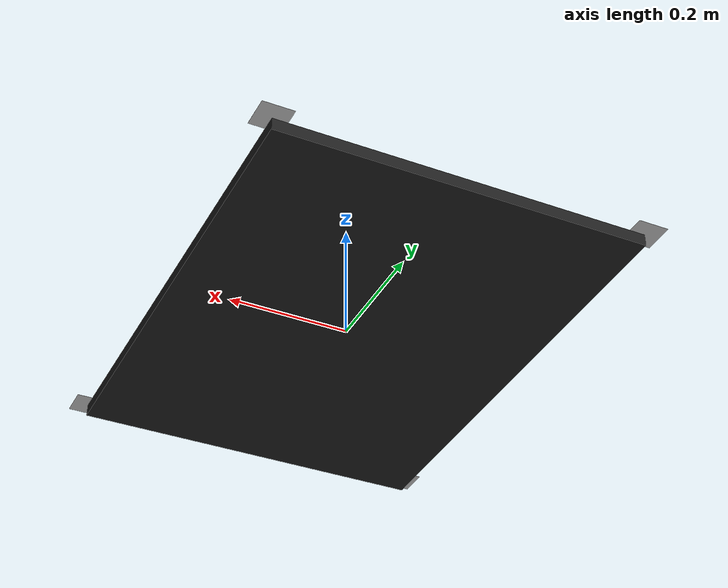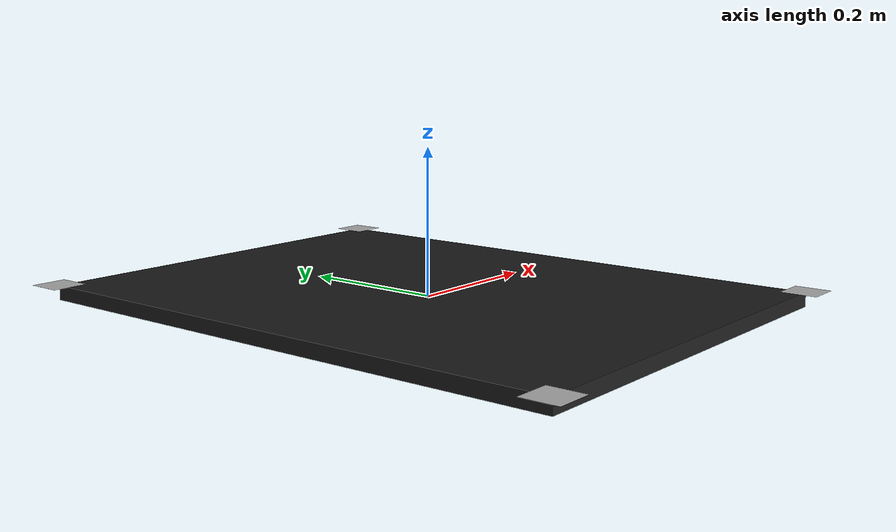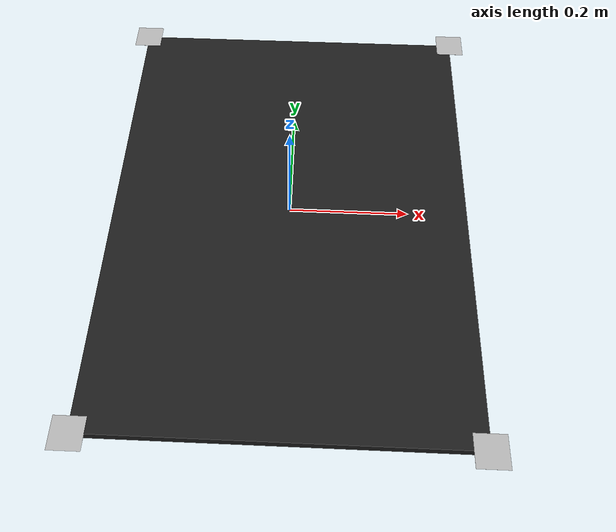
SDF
<?xml version="1.0"?>
<sdf version="1.7">
  <model name="table">
    <static>true</static>
    <link name="table_link">
      <!-- Table Center Position -->
      <pose>0 0 0 0 0 0</pose>
      <collision name="table_collision">
        <geometry>
          <box>
            <size>0.6 0.8 0.02</size> <!-- Width, Length, Height -->
          </box>
        </geometry>
      </collision>
      <visual name="table_visual">
        <geometry>
          <box>
            <size>0.6 0.8 0.02</size>
          </box>
        </geometry>
        <material>
          <script>
            <uri>file:///home/neurorobotic_student/panda_trajectory_planning/catkin_ws/src/franka_test/models/table/materials/scripts/black_table.material</uri>
            <name>BlackTable</name>
          </script>
        </material>
      </visual>

      <!-- AruCo Markers -->
      <visual name="marker_0">
        <pose>-0.3 -0.4 0.011 0 0 0</pose>
        <geometry>
          <plane>
            <size>0.05 0.05</size>
          </plane>
        </geometry>
        <material>
          <texture>
            <diffuse>file:///home/neurorobotic_student/panda_trajectory_planning/catkin_ws/src/franka_test/models/table/materials/textures/marker_0.jpg</diffuse>
          </texture>
          <shader type="pixel">
            <normal_map>yes</normal_map>
          </shader>
        </material>
      </visual>

      <visual name="marker_1">
        <pose>0.3 -0.4 0.011 0 0 0</pose>
        <geometry>
          <plane>
            <size>0.05 0.05</size>
          </plane>
        </geometry>
        <material>
          <script>
            <uri>file:///home/neurorobotic_student/panda_trajectory_planning/catkin_ws/src/franka_test/models/table/materials/textures/marker_1.jpg</uri>
          </script>
        </material>
      </visual>

      <visual name="marker_2">
        <pose>-0.3 0.4 0.011 0 0 0</pose>
        <geometry>
          <plane>
            <size>0.05 0.05</size>
          </plane>
        </geometry>
        <material>
          <script>
            <uri>file:///home/neurorobotic_student/panda_trajectory_planning/catkin_ws/src/franka_test/models/table/materials/textures/marker_2.jpg</uri>
          </script>
        </material>
      </visual>

      <visual name="marker_3">
        <pose>0.3 0.4 0.011 0 0 0</pose>
        <geometry>
          <plane>
            <size>0.05 0.05</size>
          </plane>
        </geometry>
        <material>
          <script>
            <uri>file:///home/neurorobotic_student/panda_trajectory_planning/catkin_ws/src/franka_test/models/table/materials/textures/marker_3.jpg</uri>
          </script>
        </material>
      </visual>
    </link>
  </model>
</sdf>
